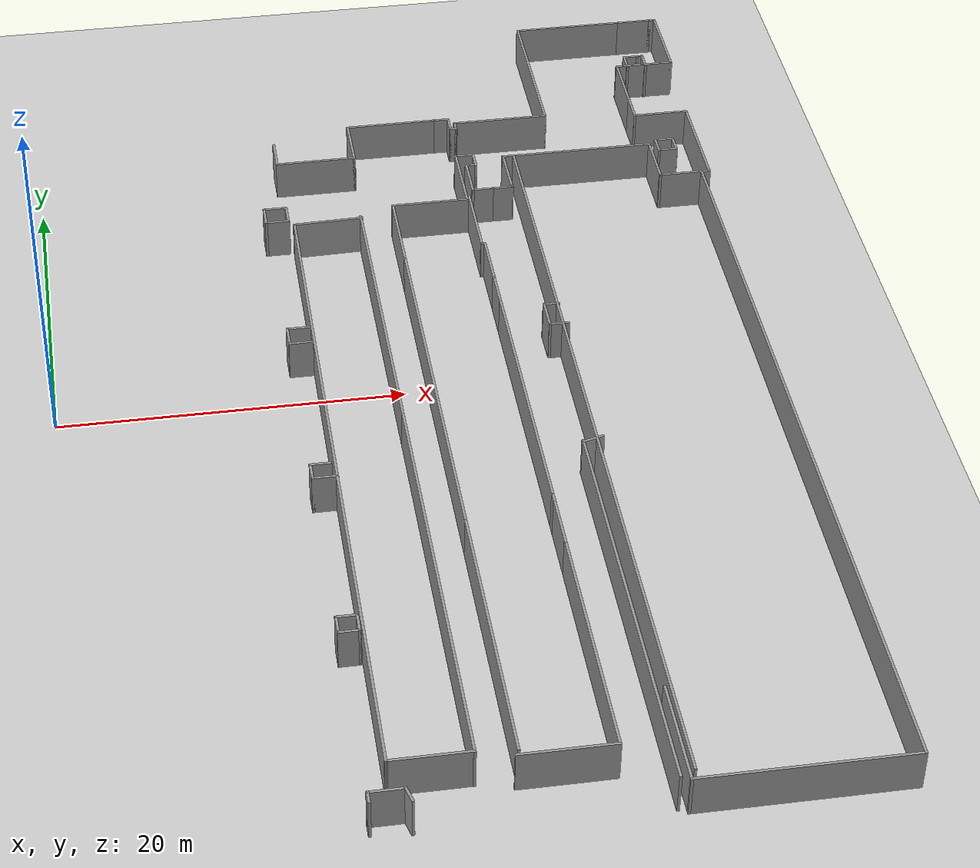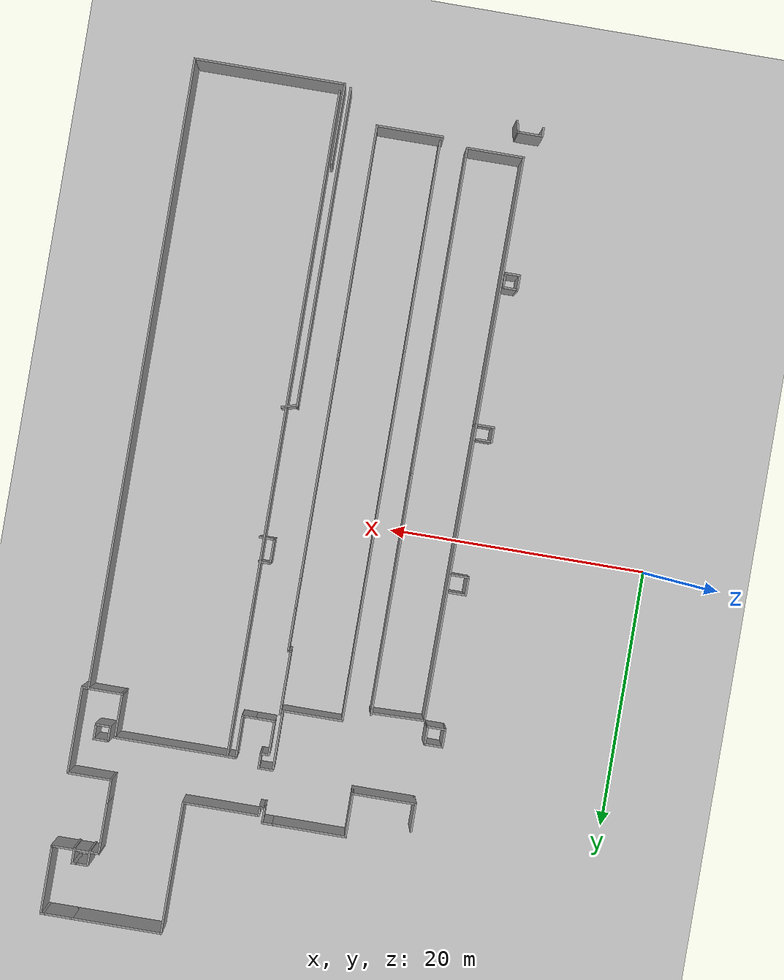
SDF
<sdf version="1.6">
 <world name="default">
  <model name="ground_plane">
   <static>1</static>
   <link name="link">
    <collision name="collision">
     <geometry><plane><normal>0 0 1</normal><size>100 100</size></plane></geometry>
     <surface><friction><ode><mu>100</mu><mu2>50</mu2></ode></friction></surface>
    </collision>
    <visual name="visual">
     <transparency>1</transparency>
     <cast_shadows>0</cast_shadows>
     <geometry><plane><normal>0 0 1</normal><size>100 100</size></plane></geometry>
     <material>
      <script><uri>file://media/materials/scripts/gazebo.material</uri><name>Gazebo/Grey</name></script>
     </material>
    </visual>
   </link>
  </model>
  <model name="AGV_smt">
   <pose>-16.0022 0.08637 0 0 -0 0</pose>
   <link name="Wall_101">
    <collision name="Wall_101_Collision">
     <geometry><box><size>1.25 0.15 2.5</size></box></geometry>
     <pose>0 0 1.25 0 -0 0</pose>
    </collision>
    <visual name="Wall_101_Visual">
     <pose>0 0 1.25 0 -0 0</pose>
     <geometry><box><size>1.25 0.15 2.5</size></box></geometry>
     <material>
      <script><uri>file://media/materials/scripts/gazebo.material</uri><name>Gazebo/Grey</name></script>
      <ambient>1 1 1 1</ambient>
     </material>
    </visual>
    <pose>30.186 -20.9124 0 0 -0 3.14159</pose>
   </link>
   <link name="Wall_102">
    <collision name="Wall_102_Collision">
     <geometry><box><size>1.25 0.15 2.5</size></box></geometry>
     <pose>0 0 1.25 0 -0 0</pose>
    </collision>
    <visual name="Wall_102_Visual">
     <pose>0 0 1.25 0 -0 0</pose>
     <geometry><box><size>1.25 0.15 2.5</size></box></geometry>
     <material>
      <script><uri>file://media/materials/scripts/gazebo.material</uri><name>Gazebo/Grey</name></script>
      <ambient>1 1 1 1</ambient>
     </material>
    </visual>
    <pose>29.636 -20.3624 0 0 -0 1.5708</pose>
   </link>
   <link name="Wall_103">
    <collision name="Wall_103_Collision">
     <geometry><box><size>1.25 0.15 2.5</size></box></geometry>
     <pose>0 0 1.25 0 -0 0</pose>
    </collision>
    <visual name="Wall_103_Visual">
     <pose>0 0 1.25 0 -0 0</pose>
     <geometry><box><size>1.25 0.15 2.5</size></box></geometry>
     <material>
      <script><uri>file://media/materials/scripts/gazebo.material</uri><name>Gazebo/Grey</name></script>
      <ambient>1 1 1 1</ambient>
     </material>
    </visual>
    <pose>30.186 -19.8124 0 0 -0 0</pose>
   </link>
   <link name="Wall_104">
    <collision name="Wall_104_Collision">
     <geometry><box><size>1.25 0.15 2.5</size></box></geometry>
     <pose>0 0 1.25 0 -0 0</pose>
    </collision>
    <visual name="Wall_104_Visual">
     <pose>0 0 1.25 0 -0 0</pose>
     <geometry><box><size>1.25 0.15 2.5</size></box></geometry>
     <material>
      <script><uri>file://media/materials/scripts/gazebo.material</uri><name>Gazebo/Grey</name></script>
      <ambient>1 1 1 1</ambient>
     </material>
    </visual>
    <pose>30.736 -20.3624 0 0 0 -1.5708</pose>
   </link>
   <link name="Wall_172">
    <collision name="Wall_172_Collision">
     <geometry><box><size>51.4198 0.15 2.5</size></box></geometry>
     <pose>0 0 1.25 0 -0 0</pose>
    </collision>
    <visual name="Wall_172_Visual">
     <pose>0 0 1.25 0 -0 0</pose>
     <geometry><box><size>51.4198 0.15 2.5</size></box></geometry>
     <material>
      <script><uri>file://media/materials/scripts/gazebo.material</uri><name>Gazebo/Grey</name></script>
      <ambient>1 1 1 1</ambient>
     </material>
    </visual>
    <pose>45.5282 -6.82754 0 0 -0 1.5708</pose>
   </link>
   <link name="Wall_174">
    <collision name="Wall_174_Collision">
     <geometry><box><size>1.25 0.15 2.5</size></box></geometry>
     <pose>0 0 1.25 0 -0 0</pose>
    </collision>
    <visual name="Wall_174_Visual">
     <pose>0 0 1.25 0 -0 0</pose>
     <geometry><box><size>1.25 0.15 2.5</size></box></geometry>
     <material>
      <script><uri>file://media/materials/scripts/gazebo.material</uri><name>Gazebo/Grey</name></script>
      <ambient>1 1 1 1</ambient>
     </material>
    </visual>
    <pose>54.69 18.7491 0 0 0 -1.5708</pose>
   </link>
   <link name="Wall_175">
    <collision name="Wall_175_Collision">
     <geometry><box><size>1.25 0.15 2.5</size></box></geometry>
     <pose>0 0 1.25 0 -0 0</pose>
    </collision>
    <visual name="Wall_175_Visual">
     <pose>0 0 1.25 0 -0 0</pose>
     <geometry><box><size>1.25 0.15 2.5</size></box></geometry>
     <material>
      <script><uri>file://media/materials/scripts/gazebo.material</uri><name>Gazebo/Grey</name></script>
      <ambient>1 1 1 1</ambient>
     </material>
    </visual>
    <pose>55.2401 18.1991 0 0 -0 0</pose>
   </link>
   <link name="Wall_176">
    <collision name="Wall_176_Collision">
     <geometry><box><size>1.25 0.15 2.5</size></box></geometry>
     <pose>0 0 1.25 0 -0 0</pose>
    </collision>
    <visual name="Wall_176_Visual">
     <pose>0 0 1.25 0 -0 0</pose>
     <geometry><box><size>1.25 0.15 2.5</size></box></geometry>
     <material>
      <script><uri>file://media/materials/scripts/gazebo.material</uri><name>Gazebo/Grey</name></script>
      <ambient>1 1 1 1</ambient>
     </material>
    </visual>
    <pose>55.7901 18.7491 0 0 -0 1.5708</pose>
   </link>
   <link name="Wall_177">
    <collision name="Wall_177_Collision">
     <geometry><box><size>1.25 0.15 2.5</size></box></geometry>
     <pose>0 0 1.25 0 -0 0</pose>
    </collision>
    <visual name="Wall_177_Visual">
     <pose>0 0 1.25 0 -0 0</pose>
     <geometry><box><size>1.25 0.15 2.5</size></box></geometry>
     <material>
      <script><uri>file://media/materials/scripts/gazebo.material</uri><name>Gazebo/Grey</name></script>
      <ambient>1 1 1 1</ambient>
     </material>
    </visual>
    <pose>55.2401 19.2991 0 0 -0 3.14159</pose>
   </link>
   <link name="Wall_179">
    <collision name="Wall_179_Collision">
     <geometry><box><size>1.25 0.15 2.5</size></box></geometry>
     <pose>0 0 1.25 0 -0 0</pose>
    </collision>
    <visual name="Wall_179_Visual">
     <pose>0 0 1.25 0 -0 0</pose>
     <geometry><box><size>1.25 0.15 2.5</size></box></geometry>
     <material>
      <script><uri>file://media/materials/scripts/gazebo.material</uri><name>Gazebo/Grey</name></script>
      <ambient>1 1 1 1</ambient>
     </material>
    </visual>
    <pose>54.6433 28.3539 0 0 -0 1.5708</pose>
   </link>
   <link name="Wall_180">
    <collision name="Wall_180_Collision">
     <geometry><box><size>1 0.15 2.5</size></box></geometry>
     <pose>0 0 1.25 0 -0 0</pose>
    </collision>
    <visual name="Wall_180_Visual">
     <pose>0 0 1.25 0 -0 0</pose>
     <geometry><box><size>1 0.15 2.5</size></box></geometry>
     <material>
      <script><uri>file://media/materials/scripts/gazebo.material</uri><name>Gazebo/Grey</name></script>
      <ambient>1 1 1 1</ambient>
     </material>
    </visual>
    <pose>55.0683 28.9039 0 0 -0 0</pose>
   </link>
   <link name="Wall_181">
    <collision name="Wall_181_Collision">
     <geometry><box><size>0.5 0.15 2.5</size></box></geometry>
     <pose>0 0 1.25 0 -0 0</pose>
    </collision>
    <visual name="Wall_181_Visual">
     <pose>0 0 1.25 0 -0 0</pose>
     <geometry><box><size>0.5 0.15 2.5</size></box></geometry>
     <material>
      <script><uri>file://media/materials/scripts/gazebo.material</uri><name>Gazebo/Grey</name></script>
      <ambient>1 1 1 1</ambient>
     </material>
    </visual>
    <pose>55.6683 28.9039 0 0 -0 0</pose>
   </link>
   <link name="Wall_182">
    <collision name="Wall_182_Collision">
     <geometry><box><size>1.25 0.15 2.5</size></box></geometry>
     <pose>0 0 1.25 0 -0 0</pose>
    </collision>
    <visual name="Wall_182_Visual">
     <pose>0 0 1.25 0 -0 0</pose>
     <geometry><box><size>1.25 0.15 2.5</size></box></geometry>
     <material>
      <script><uri>file://media/materials/scripts/gazebo.material</uri><name>Gazebo/Grey</name></script>
      <ambient>1 1 1 1</ambient>
     </material>
    </visual>
    <pose>55.8433 28.3539 0 0 0 -1.5708</pose>
   </link>
   <link name="Wall_184">
    <collision name="Wall_184_Collision">
     <geometry><box><size>1 0.15 2.5</size></box></geometry>
     <pose>0 0 1.25 0 -0 0</pose>
    </collision>
    <visual name="Wall_184_Visual">
     <pose>0 0 1.25 0 -0 0</pose>
     <geometry><box><size>1 0.15 2.5</size></box></geometry>
     <material>
      <script><uri>file://media/materials/scripts/gazebo.material</uri><name>Gazebo/Grey</name></script>
      <ambient>1 1 1 1</ambient>
     </material>
    </visual>
    <pose>45.1759 3.8874 0 0 -0 3.14159</pose>
   </link>
   <link name="Wall_185">
    <collision name="Wall_185_Collision">
     <geometry><box><size>2 0.15 2.5</size></box></geometry>
     <pose>0 0 1.25 0 -0 0</pose>
    </collision>
    <visual name="Wall_185_Visual">
     <pose>0 0 1.25 0 -0 0</pose>
     <geometry><box><size>2 0.15 2.5</size></box></geometry>
     <material>
      <script><uri>file://media/materials/scripts/gazebo.material</uri><name>Gazebo/Grey</name></script>
      <ambient>1 1 1 1</ambient>
     </material>
    </visual>
    <pose>44.7509 2.9624 0 0 0 -1.5708</pose>
   </link>
   <link name="Wall_186">
    <collision name="Wall_186_Collision">
     <geometry><box><size>1.25 0.15 2.5</size></box></geometry>
     <pose>0 0 1.25 0 -0 0</pose>
    </collision>
    <visual name="Wall_186_Visual">
     <pose>0 0 1.25 0 -0 0</pose>
     <geometry><box><size>1.25 0.15 2.5</size></box></geometry>
     <material>
      <script><uri>file://media/materials/scripts/gazebo.material</uri><name>Gazebo/Grey</name></script>
      <ambient>1 1 1 1</ambient>
     </material>
    </visual>
    <pose>45.3009 2.0374 0 0 -0 0</pose>
   </link>
   <link name="Wall_188">
    <collision name="Wall_188_Collision">
     <geometry><box><size>1.33211 0.15 2.5</size></box></geometry>
     <pose>0 0 1.25 0 -0 0</pose>
    </collision>
    <visual name="Wall_188_Visual">
     <pose>0 0 1.25 0 -0 0</pose>
     <geometry><box><size>1.33211 0.15 2.5</size></box></geometry>
     <material>
      <script><uri>file://media/materials/scripts/gazebo.material</uri><name>Gazebo/Grey</name></script>
      <ambient>1 1 1 1</ambient>
     </material>
    </visual>
    <pose>45.3002 -8.1828 0 0 0 -2.87045</pose>
   </link>
   <link name="Wall_189">
    <collision name="Wall_189_Collision">
     <geometry><box><size>24.75 0.15 2.5</size></box></geometry>
     <pose>0 0 1.25 0 -0 0</pose>
    </collision>
    <visual name="Wall_189_Visual">
     <pose>0 0 1.25 0 -0 0</pose>
     <geometry><box><size>24.75 0.15 2.5</size></box></geometry>
     <material>
      <script><uri>file://media/materials/scripts/gazebo.material</uri><name>Gazebo/Grey</name></script>
      <ambient>1 1 1 1</ambient>
     </material>
    </visual>
    <pose>44.7308 -20.5356 0 0 0 -1.5708</pose>
   </link>
   <link name="Wall_199">
    <collision name="Wall_199_Collision">
     <geometry><box><size>0.75 0.15 2.5</size></box></geometry>
     <pose>0 0 1.25 0 -0 0</pose>
    </collision>
    <visual name="Wall_199_Visual">
     <pose>0 0 1.25 0 -0 0</pose>
     <geometry><box><size>0.75 0.15 2.5</size></box></geometry>
     <material>
      <script><uri>file://media/materials/scripts/gazebo.material</uri><name>Gazebo/Grey</name></script>
      <ambient>1 1 1 1</ambient>
     </material>
    </visual>
    <pose>29.7216 -31.9815 0 0 -0 1.5708</pose>
   </link>
   <link name="Wall_200">
    <collision name="Wall_200_Collision">
     <geometry><box><size>2 0.15 2.5</size></box></geometry>
     <pose>0 0 1.25 0 -0 0</pose>
    </collision>
    <visual name="Wall_200_Visual">
     <pose>0 0 1.25 0 -0 0</pose>
     <geometry><box><size>2 0.15 2.5</size></box></geometry>
     <material>
      <script><uri>file://media/materials/scripts/gazebo.material</uri><name>Gazebo/Grey</name></script>
      <ambient>1 1 1 1</ambient>
     </material>
    </visual>
    <pose>30.6466 -31.6815 0 0 -0 0</pose>
   </link>
   <link name="Wall_201">
    <collision name="Wall_201_Collision">
     <geometry><box><size>1 0.15 2.5</size></box></geometry>
     <pose>0 0 1.25 0 -0 0</pose>
    </collision>
    <visual name="Wall_201_Visual">
     <pose>0 0 1.25 0 -0 0</pose>
     <geometry><box><size>1 0.15 2.5</size></box></geometry>
     <material>
      <script><uri>file://media/materials/scripts/gazebo.material</uri><name>Gazebo/Grey</name></script>
      <ambient>1 1 1 1</ambient>
     </material>
    </visual>
    <pose>31.6816 -32.092 0 0 0 -1.309</pose>
   </link>
   <link name="Wall_219">
    <collision name="Wall_219_Collision">
     <geometry><box><size>48.75 0.15 2.5</size></box></geometry>
     <pose>0 0 1.25 0 -0 0</pose>
    </collision>
    <visual name="Wall_219_Visual">
     <pose>0 0 1.25 0 -0 0</pose>
     <geometry><box><size>48.75 0.15 2.5</size></box></geometry>
     <material>
      <script><uri>file://media/materials/scripts/gazebo.material</uri><name>Gazebo/Grey</name></script>
      <ambient>1 1 1 1</ambient>
     </material>
    </visual>
    <pose>56.8238 -8.78608 0 0 0 -1.5708</pose>
   </link>
   <link name="Wall_22">
    <collision name="Wall_22_Collision">
     <geometry><box><size>2.25 0.15 2.5</size></box></geometry>
     <pose>0 0 1.25 0 -0 0</pose>
    </collision>
    <visual name="Wall_22_Visual">
     <pose>0 0 1.25 0 -0 0</pose>
     <geometry><box><size>2.25 0.15 2.5</size></box></geometry>
     <material>
      <script><uri>file://media/materials/scripts/gazebo.material</uri><name>Gazebo/Grey</name></script>
      <ambient>1 1 1 1</ambient>
     </material>
    </visual>
    <pose>30.7578 21.1861 0 0 0 -1.5708</pose>
   </link>
   <link name="Wall_220">
    <collision name="Wall_220_Collision">
     <geometry><box><size>11.75 0.15 2.5</size></box></geometry>
     <pose>0 0 1.25 0 -0 0</pose>
    </collision>
    <visual name="Wall_220_Visual">
     <pose>0 0 1.25 0 -0 0</pose>
     <geometry><box><size>11.75 0.15 2.5</size></box></geometry>
     <material>
      <script><uri>file://media/materials/scripts/gazebo.material</uri><name>Gazebo/Grey</name></script>
      <ambient>1 1 1 1</ambient>
     </material>
    </visual>
    <pose>51.0238 -33.0861 0 0 -0 3.14159</pose>
   </link>
   <link name="Wall_221">
    <collision name="Wall_221_Collision">
     <geometry><box><size>6.25 0.15 2.5</size></box></geometry>
     <pose>0 0 1.25 0 -0 0</pose>
    </collision>
    <visual name="Wall_221_Visual">
     <pose>0 0 1.25 0 -0 0</pose>
     <geometry><box><size>6.25 0.15 2.5</size></box></geometry>
     <material>
      <script><uri>file://media/materials/scripts/gazebo.material</uri><name>Gazebo/Grey</name></script>
      <ambient>1 1 1 1</ambient>
     </material>
    </visual>
    <pose>45.2238 -30.0361 0 0 -0 1.5708</pose>
   </link>
   <link name="Wall_23">
    <collision name="Wall_23_Collision">
     <geometry><box><size>5 0.15 2.5</size></box></geometry>
     <pose>0 0 1.25 0 -0 0</pose>
    </collision>
    <visual name="Wall_23_Visual">
     <pose>0 0 1.25 0 -0 0</pose>
     <geometry><box><size>5 0.15 2.5</size></box></geometry>
     <material>
      <script><uri>file://media/materials/scripts/gazebo.material</uri><name>Gazebo/Grey</name></script>
      <ambient>1 1 1 1</ambient>
     </material>
    </visual>
    <pose>33.1828 20.1361 0 0 -0 0</pose>
   </link>
   <link name="Wall_24">
    <collision name="Wall_24_Collision">
     <geometry><box><size>3.5 0.15 2.5</size></box></geometry>
     <pose>0 0 1.25 0 -0 0</pose>
    </collision>
    <visual name="Wall_24_Visual">
     <pose>0 0 1.25 0 -0 0</pose>
     <geometry><box><size>3.5 0.15 2.5</size></box></geometry>
     <material>
      <script><uri>file://media/materials/scripts/gazebo.material</uri><name>Gazebo/Grey</name></script>
      <ambient>1 1 1 1</ambient>
     </material>
    </visual>
    <pose>35.6078 21.8111 0 0 -0 1.5708</pose>
   </link>
   <link name="Wall_25">
    <collision name="Wall_25_Collision">
     <geometry><box><size>5.75 0.15 2.5</size></box></geometry>
     <pose>0 0 1.25 0 -0 0</pose>
    </collision>
    <visual name="Wall_25_Visual">
     <pose>0 0 1.25 0 -0 0</pose>
     <geometry><box><size>5.75 0.15 2.5</size></box></geometry>
     <material>
      <script><uri>file://media/materials/scripts/gazebo.material</uri><name>Gazebo/Grey</name></script>
      <ambient>1 1 1 1</ambient>
     </material>
    </visual>
    <pose>38.4078 23.4861 0 0 -0 0</pose>
   </link>
   <link name="Wall_27">
    <collision name="Wall_27_Collision">
     <geometry><box><size>1 0.15 2.5</size></box></geometry>
     <pose>0 0 1.25 0 -0 0</pose>
    </collision>
    <visual name="Wall_27_Visual">
     <pose>0 0 1.25 0 -0 0</pose>
     <geometry><box><size>1 0.15 2.5</size></box></geometry>
     <material>
      <script><uri>file://media/materials/scripts/gazebo.material</uri><name>Gazebo/Grey</name></script>
      <ambient>1 1 1 1</ambient>
     </material>
    </visual>
    <pose>41.6328 23.4861 0 0 -0 0</pose>
   </link>
   <link name="Wall_28">
    <collision name="Wall_28_Collision">
     <geometry><box><size>1.25 0.15 2.5</size></box></geometry>
     <pose>0 0 1.25 0 -0 0</pose>
    </collision>
    <visual name="Wall_28_Visual">
     <pose>0 0 1.25 0 -0 0</pose>
     <geometry><box><size>1.25 0.15 2.5</size></box></geometry>
     <material>
      <script><uri>file://media/materials/scripts/gazebo.material</uri><name>Gazebo/Grey</name></script>
      <ambient>1 1 1 1</ambient>
     </material>
    </visual>
    <pose>42.0578 22.9361 0 0 0 -1.5708</pose>
   </link>
   <link name="Wall_29">
    <collision name="Wall_29_Collision">
     <geometry><box><size>0.5 0.15 2.5</size></box></geometry>
     <pose>0 0 1.25 0 -0 0</pose>
    </collision>
    <visual name="Wall_29_Visual">
     <pose>0 0 1.25 0 -0 0</pose>
     <geometry><box><size>0.5 0.15 2.5</size></box></geometry>
     <material>
      <script><uri>file://media/materials/scripts/gazebo.material</uri><name>Gazebo/Grey</name></script>
      <ambient>1 1 1 1</ambient>
     </material>
    </visual>
    <pose>42.2328 22.3861 0 0 -0 0</pose>
   </link>
   <link name="Wall_30">
    <collision name="Wall_30_Collision">
     <geometry><box><size>0.75 0.15 2.5</size></box></geometry>
     <pose>0 0 1.25 0 -0 0</pose>
    </collision>
    <visual name="Wall_30_Visual">
     <pose>0 0 1.25 0 -0 0</pose>
     <geometry><box><size>0.75 0.15 2.5</size></box></geometry>
     <material>
      <script><uri>file://media/materials/scripts/gazebo.material</uri><name>Gazebo/Grey</name></script>
      <ambient>1 1 1 1</ambient>
     </material>
    </visual>
    <pose>42.4078 22.6861 0 0 -0 1.5708</pose>
   </link>
   <link name="Wall_31">
    <collision name="Wall_31_Collision">
     <geometry><box><size>6 0.15 2.5</size></box></geometry>
     <pose>0 0 1.25 0 -0 0</pose>
    </collision>
    <visual name="Wall_31_Visual">
     <pose>0 0 1.25 0 -0 0</pose>
     <geometry><box><size>6 0.15 2.5</size></box></geometry>
     <material>
      <script><uri>file://media/materials/scripts/gazebo.material</uri><name>Gazebo/Grey</name></script>
      <ambient>1 1 1 1</ambient>
     </material>
    </visual>
    <pose>45.3328 22.9861 0 0 -0 0</pose>
   </link>
   <link name="Wall_32">
    <collision name="Wall_32_Collision">
     <geometry><box><size>10.25 0.15 2.5</size></box></geometry>
     <pose>0 0 1.25 0 -0 0</pose>
    </collision>
    <visual name="Wall_32_Visual">
     <pose>0 0 1.25 0 -0 0</pose>
     <geometry><box><size>10.25 0.15 2.5</size></box></geometry>
     <material>
      <script><uri>file://media/materials/scripts/gazebo.material</uri><name>Gazebo/Grey</name></script>
      <ambient>1 1 1 1</ambient>
     </material>
    </visual>
    <pose>48.2578 28.0361 0 0 -0 1.5708</pose>
   </link>
   <link name="Wall_33">
    <collision name="Wall_33_Collision">
     <geometry><box><size>7 0.15 2.5</size></box></geometry>
     <pose>0 0 1.25 0 -0 0</pose>
    </collision>
    <visual name="Wall_33_Visual">
     <pose>0 0 1.25 0 -0 0</pose>
     <geometry><box><size>7 0.15 2.5</size></box></geometry>
     <material>
      <script><uri>file://media/materials/scripts/gazebo.material</uri><name>Gazebo/Grey</name></script>
      <ambient>1 1 1 1</ambient>
     </material>
    </visual>
    <pose>51.6828 33.0861 0 0 -0 0</pose>
   </link>
   <link name="Wall_35">
    <collision name="Wall_35_Collision">
     <geometry><box><size>2.25 0.15 2.5</size></box></geometry>
     <pose>0 0 1.25 0 -0 0</pose>
    </collision>
    <visual name="Wall_35_Visual">
     <pose>0 0 1.25 0 -0 0</pose>
     <geometry><box><size>2.25 0.15 2.5</size></box></geometry>
     <material>
      <script><uri>file://media/materials/scripts/gazebo.material</uri><name>Gazebo/Grey</name></script>
      <ambient>1 1 1 1</ambient>
     </material>
    </visual>
    <pose>56.1578 33.0861 0 0 -0 0</pose>
   </link>
   <link name="Wall_37">
    <collision name="Wall_37_Collision">
     <geometry><box><size>0.5 0.15 2.5</size></box></geometry>
     <pose>0 0 1.25 0 -0 0</pose>
    </collision>
    <visual name="Wall_37_Visual">
     <pose>0 0 1.25 0 -0 0</pose>
     <geometry><box><size>0.5 0.15 2.5</size></box></geometry>
     <material>
      <script><uri>file://media/materials/scripts/gazebo.material</uri><name>Gazebo/Grey</name></script>
      <ambient>1 1 1 1</ambient>
     </material>
    </visual>
    <pose>57.3828 33.0861 0 0 -0 0</pose>
   </link>
   <link name="Wall_38">
    <collision name="Wall_38_Collision">
     <geometry><box><size>5.25 0.15 2.5</size></box></geometry>
     <pose>0 0 1.25 0 -0 0</pose>
    </collision>
    <visual name="Wall_38_Visual">
     <pose>0 0 1.25 0 -0 0</pose>
     <geometry><box><size>5.25 0.15 2.5</size></box></geometry>
     <material>
      <script><uri>file://media/materials/scripts/gazebo.material</uri><name>Gazebo/Grey</name></script>
      <ambient>1 1 1 1</ambient>
     </material>
    </visual>
    <pose>57.5578 30.5361 0 0 0 -1.5708</pose>
   </link>
   <link name="Wall_39">
    <collision name="Wall_39_Collision">
     <geometry><box><size>0.25 0.15 2.5</size></box></geometry>
     <pose>0 0 1.25 0 -0 0</pose>
    </collision>
    <visual name="Wall_39_Visual">
     <pose>0 0 1.25 0 -0 0</pose>
     <geometry><box><size>0.25 0.15 2.5</size></box></geometry>
     <material>
      <script><uri>file://media/materials/scripts/gazebo.material</uri><name>Gazebo/Grey</name></script>
      <ambient>1 1 1 1</ambient>
     </material>
    </visual>
    <pose>57.5578 27.9361 0 0 0 -1.5708</pose>
   </link>
   <link name="Wall_40">
    <collision name="Wall_40_Collision">
     <geometry><box><size>3.75 0.15 2.5</size></box></geometry>
     <pose>0 0 1.25 0 -0 0</pose>
    </collision>
    <visual name="Wall_40_Visual">
     <pose>0 0 1.25 0 -0 0</pose>
     <geometry><box><size>3.75 0.15 2.5</size></box></geometry>
     <material>
      <script><uri>file://media/materials/scripts/gazebo.material</uri><name>Gazebo/Grey</name></script>
      <ambient>1 1 1 1</ambient>
     </material>
    </visual>
    <pose>55.7578 27.8861 0 0 -0 3.14159</pose>
   </link>
   <link name="Wall_41">
    <collision name="Wall_41_Collision">
     <geometry><box><size>4 0.15 2.5</size></box></geometry>
     <pose>0 0 1.25 0 -0 0</pose>
    </collision>
    <visual name="Wall_41_Visual">
     <pose>0 0 1.25 0 -0 0</pose>
     <geometry><box><size>4 0.15 2.5</size></box></geometry>
     <material>
      <script><uri>file://media/materials/scripts/gazebo.material</uri><name>Gazebo/Grey</name></script>
      <ambient>1 1 1 1</ambient>
     </material>
    </visual>
    <pose>53.9578 25.9611 0 0 0 -1.5708</pose>
   </link>
   <link name="Wall_43">
    <collision name="Wall_43_Collision">
     <geometry><box><size>2 0.15 2.5</size></box></geometry>
     <pose>0 0 1.25 0 -0 0</pose>
    </collision>
    <visual name="Wall_43_Visual">
     <pose>0 0 1.25 0 -0 0</pose>
     <geometry><box><size>2 0.15 2.5</size></box></geometry>
     <material>
      <script><uri>file://media/materials/scripts/gazebo.material</uri><name>Gazebo/Grey</name></script>
      <ambient>1 1 1 1</ambient>
     </material>
    </visual>
    <pose>53.9578 23.1111 0 0 0 -1.5708</pose>
   </link>
   <link name="Wall_44">
    <collision name="Wall_44_Collision">
     <geometry><box><size>3.5 0.15 2.5</size></box></geometry>
     <pose>0 0 1.25 0 -0 0</pose>
    </collision>
    <visual name="Wall_44_Visual">
     <pose>0 0 1.25 0 -0 0</pose>
     <geometry><box><size>3.5 0.15 2.5</size></box></geometry>
     <material>
      <script><uri>file://media/materials/scripts/gazebo.material</uri><name>Gazebo/Grey</name></script>
      <ambient>1 1 1 1</ambient>
     </material>
    </visual>
    <pose>55.6328 22.1861 0 0 -0 0</pose>
   </link>
   <link name="Wall_45">
    <collision name="Wall_45_Collision">
     <geometry><box><size>6.75 0.15 2.5</size></box></geometry>
     <pose>0 0 1.25 0 -0 0</pose>
    </collision>
    <visual name="Wall_45_Visual">
     <pose>0 0 1.25 0 -0 0</pose>
     <geometry><box><size>6.75 0.15 2.5</size></box></geometry>
     <material>
      <script><uri>file://media/materials/scripts/gazebo.material</uri><name>Gazebo/Grey</name></script>
      <ambient>1 1 1 1</ambient>
     </material>
    </visual>
    <pose>57.3078 18.8861 0 0 0 -1.5708</pose>
   </link>
   <link name="Wall_46">
    <collision name="Wall_46_Collision">
     <geometry><box><size>3.25 0.15 2.5</size></box></geometry>
     <pose>0 0 1.25 0 -0 0</pose>
    </collision>
    <visual name="Wall_46_Visual">
     <pose>0 0 1.25 0 -0 0</pose>
     <geometry><box><size>3.25 0.15 2.5</size></box></geometry>
     <material>
      <script><uri>file://media/materials/scripts/gazebo.material</uri><name>Gazebo/Grey</name></script>
      <ambient>1 1 1 1</ambient>
     </material>
    </visual>
    <pose>55.7578 15.5861 0 0 -0 3.14159</pose>
   </link>
   <link name="Wall_47">
    <collision name="Wall_47_Collision">
     <geometry><box><size>3.5 0.15 2.5</size></box></geometry>
     <pose>0 0 1.25 0 -0 0</pose>
    </collision>
    <visual name="Wall_47_Visual">
     <pose>0 0 1.25 0 -0 0</pose>
     <geometry><box><size>3.5 0.15 2.5</size></box></geometry>
     <material>
      <script><uri>file://media/materials/scripts/gazebo.material</uri><name>Gazebo/Grey</name></script>
      <ambient>1 1 1 1</ambient>
     </material>
    </visual>
    <pose>54.2078 17.2611 0 0 -0 1.5708</pose>
   </link>
   <link name="Wall_48">
    <collision name="Wall_48_Collision">
     <geometry><box><size>9.5 0.15 2.5</size></box></geometry>
     <pose>0 0 1.25 0 -0 0</pose>
    </collision>
    <visual name="Wall_48_Visual">
     <pose>0 0 1.25 0 -0 0</pose>
     <geometry><box><size>9.5 0.15 2.5</size></box></geometry>
     <material>
      <script><uri>file://media/materials/scripts/gazebo.material</uri><name>Gazebo/Grey</name></script>
      <ambient>1 1 1 1</ambient>
     </material>
    </visual>
    <pose>49.5328 18.9361 0 0 -0 3.14159</pose>
   </link>
   <link name="Wall_49">
    <collision name="Wall_49_Collision">
     <geometry><box><size>3.27295 0.15 2.5</size></box></geometry>
     <pose>0 0 1.25 0 -0 0</pose>
    </collision>
    <visual name="Wall_49_Visual">
     <pose>0 0 1.25 0 -0 0</pose>
     <geometry><box><size>3.27295 0.15 2.5</size></box></geometry>
     <material>
      <script><uri>file://media/materials/scripts/gazebo.material</uri><name>Gazebo/Grey</name></script>
      <ambient>1 1 1 1</ambient>
     </material>
    </visual>
    <pose>44.8693 17.3746 0 0 0 -1.56347</pose>
   </link>
   <link name="Wall_54">
    <collision name="Wall_54_Collision">
     <geometry><box><size>0.260739 0.15 2.5</size></box></geometry>
     <pose>0 0 1.25 0 -0 0</pose>
    </collision>
    <visual name="Wall_54_Visual">
     <pose>0 0 1.25 0 -0 0</pose>
     <geometry><box><size>0.260739 0.15 2.5</size></box></geometry>
     <material>
      <script><uri>file://media/materials/scripts/gazebo.material</uri><name>Gazebo/Grey</name></script>
      <ambient>1 1 1 1</ambient>
     </material>
    </visual>
    <pose>44.8767 15.758 0 0 0 -1.64372</pose>
   </link>
   <link name="Wall_55">
    <collision name="Wall_55_Collision">
     <geometry><box><size>1.25 0.15 2.5</size></box></geometry>
     <pose>0 0 1.25 0 -0 0</pose>
    </collision>
    <visual name="Wall_55_Visual">
     <pose>0 0 1.25 0 -0 0</pose>
     <geometry><box><size>1.25 0.15 2.5</size></box></geometry>
     <material>
      <script><uri>file://media/materials/scripts/gazebo.material</uri><name>Gazebo/Grey</name></script>
      <ambient>1 1 1 1</ambient>
     </material>
    </visual>
    <pose>44.3259 15.6995 0 0 -0 3.14159</pose>
   </link>
   <link name="Wall_57">
    <collision name="Wall_57_Collision">
     <geometry><box><size>1.5 0.15 2.5</size></box></geometry>
     <pose>0 0 1.25 0 -0 0</pose>
    </collision>
    <visual name="Wall_57_Visual">
     <pose>0 0 1.25 0 -0 0</pose>
     <geometry><box><size>1.5 0.15 2.5</size></box></geometry>
     <material>
      <script><uri>file://media/materials/scripts/gazebo.material</uri><name>Gazebo/Grey</name></script>
      <ambient>1 1 1 1</ambient>
     </material>
    </visual>
    <pose>43.1009 15.6995 0 0 -0 3.14159</pose>
   </link>
   <link name="Wall_58">
    <collision name="Wall_58_Collision">
     <geometry><box><size>2.75 0.15 2.5</size></box></geometry>
     <pose>0 0 1.25 0 -0 0</pose>
    </collision>
    <visual name="Wall_58_Visual">
     <pose>0 0 1.25 0 -0 0</pose>
     <geometry><box><size>2.75 0.15 2.5</size></box></geometry>
     <material>
      <script><uri>file://media/materials/scripts/gazebo.material</uri><name>Gazebo/Grey</name></script>
      <ambient>1 1 1 1</ambient>
     </material>
    </visual>
    <pose>42.4259 16.9995 0 0 -0 1.5708</pose>
   </link>
   <link name="Wall_59">
    <collision name="Wall_59_Collision">
     <geometry><box><size>0.75 0.15 2.5</size></box></geometry>
     <pose>0 0 1.25 0 -0 0</pose>
    </collision>
    <visual name="Wall_59_Visual">
     <pose>0 0 1.25 0 -0 0</pose>
     <geometry><box><size>0.75 0.15 2.5</size></box></geometry>
     <material>
      <script><uri>file://media/materials/scripts/gazebo.material</uri><name>Gazebo/Grey</name></script>
      <ambient>1 1 1 1</ambient>
     </material>
    </visual>
    <pose>42.7259 18.2995 0 0 -0 0</pose>
   </link>
   <link name="Wall_61">
    <collision name="Wall_61_Collision">
     <geometry><box><size>1.25 0.15 2.5</size></box></geometry>
     <pose>0 0 1.25 0 -0 0</pose>
    </collision>
    <visual name="Wall_61_Visual">
     <pose>0 0 1.25 0 -0 0</pose>
     <geometry><box><size>1.25 0.15 2.5</size></box></geometry>
     <material>
      <script><uri>file://media/materials/scripts/gazebo.material</uri><name>Gazebo/Grey</name></script>
      <ambient>1 1 1 1</ambient>
     </material>
    </visual>
    <pose>43.0259 18.8495 0 0 -0 1.5708</pose>
   </link>
   <link name="Wall_62">
    <collision name="Wall_62_Collision">
     <geometry><box><size>1.25 0.15 2.5</size></box></geometry>
     <pose>0 0 1.25 0 -0 0</pose>
    </collision>
    <visual name="Wall_62_Visual">
     <pose>0 0 1.25 0 -0 0</pose>
     <geometry><box><size>1.25 0.15 2.5</size></box></geometry>
     <material>
      <script><uri>file://media/materials/scripts/gazebo.material</uri><name>Gazebo/Grey</name></script>
      <ambient>1 1 1 1</ambient>
     </material>
    </visual>
    <pose>42.4759 19.3995 0 0 -0 3.14159</pose>
   </link>
   <link name="Wall_64">
    <collision name="Wall_64_Collision">
     <geometry><box><size>4.75 0.15 2.5</size></box></geometry>
     <pose>0 0 1.25 0 -0 0</pose>
    </collision>
    <visual name="Wall_64_Visual">
     <pose>0 0 1.25 0 -0 0</pose>
     <geometry><box><size>4.75 0.15 2.5</size></box></geometry>
     <material>
      <script><uri>file://media/materials/scripts/gazebo.material</uri><name>Gazebo/Grey</name></script>
      <ambient>1 1 1 1</ambient>
     </material>
    </visual>
    <pose>41.9259 17.0995 0 0 0 -1.5708</pose>
   </link>
   <link name="Wall_65">
    <collision name="Wall_65_Collision">
     <geometry><box><size>4.75 0.15 2.5</size></box></geometry>
     <pose>0 0 1.25 0 -0 0</pose>
    </collision>
    <visual name="Wall_65_Visual">
     <pose>0 0 1.25 0 -0 0</pose>
     <geometry><box><size>4.75 0.15 2.5</size></box></geometry>
     <material>
      <script><uri>file://media/materials/scripts/gazebo.material</uri><name>Gazebo/Grey</name></script>
      <ambient>1 1 1 1</ambient>
     </material>
    </visual>
    <pose>39.6259 14.7995 0 0 -0 3.14159</pose>
   </link>
   <link name="Wall_66">
    <collision name="Wall_66_Collision">
     <geometry><box><size>5.5 0.15 2.5</size></box></geometry>
     <pose>0 0 1.25 0 -0 0</pose>
    </collision>
    <visual name="Wall_66_Visual">
     <pose>0 0 1.25 0 -0 0</pose>
     <geometry><box><size>5.5 0.15 2.5</size></box></geometry>
     <material>
      <script><uri>file://media/materials/scripts/gazebo.material</uri><name>Gazebo/Grey</name></script>
      <ambient>1 1 1 1</ambient>
     </material>
    </visual>
    <pose>37.3259 12.1245 0 0 0 -1.5708</pose>
   </link>
   <link name="Wall_67">
    <collision name="Wall_67_Collision">
     <geometry><box><size>23.25 0.15 2.5</size></box></geometry>
     <pose>0 0 1.25 0 -0 0</pose>
    </collision>
    <visual name="Wall_67_Visual">
     <pose>0 0 1.25 0 -0 0</pose>
     <geometry><box><size>23.25 0.15 2.5</size></box></geometry>
     <material>
      <script><uri>file://media/materials/scripts/gazebo.material</uri><name>Gazebo/Grey</name></script>
      <ambient>1 1 1 1</ambient>
     </material>
    </visual>
    <pose>37.3259 -2.10048 0 0 0 -1.5708</pose>
   </link>
   <link name="Wall_68">
    <collision name="Wall_68_Collision">
     <geometry><box><size>16.5 0.15 2.5</size></box></geometry>
     <pose>0 0 1.25 0 -0 0</pose>
    </collision>
    <visual name="Wall_68_Visual">
     <pose>0 0 1.25 0 -0 0</pose>
     <geometry><box><size>16.5 0.15 2.5</size></box></geometry>
     <material>
      <script><uri>file://media/materials/scripts/gazebo.material</uri><name>Gazebo/Grey</name></script>
      <ambient>1 1 1 1</ambient>
     </material>
    </visual>
    <pose>37.3259 -21.8255 0 0 0 -1.5708</pose>
   </link>
   <link name="Wall_70">
    <collision name="Wall_70_Collision">
     <geometry><box><size>5.25 0.15 2.5</size></box></geometry>
     <pose>0 0 1.25 0 -0 0</pose>
    </collision>
    <visual name="Wall_70_Visual">
     <pose>0 0 1.25 0 -0 0</pose>
     <geometry><box><size>5.25 0.15 2.5</size></box></geometry>
     <material>
      <script><uri>file://media/materials/scripts/gazebo.material</uri><name>Gazebo/Grey</name></script>
      <ambient>1 1 1 1</ambient>
     </material>
    </visual>
    <pose>39.7287 -30.3633 0 0 -0 0</pose>
   </link>
   <link name="Wall_71">
    <collision name="Wall_71_Collision">
     <geometry><box><size>14.5 0.15 2.5</size></box></geometry>
     <pose>0 0 1.25 0 -0 0</pose>
    </collision>
    <visual name="Wall_71_Visual">
     <pose>0 0 1.25 0 -0 0</pose>
     <geometry><box><size>14.5 0.15 2.5</size></box></geometry>
     <material>
      <script><uri>file://media/materials/scripts/gazebo.material</uri><name>Gazebo/Grey</name></script>
      <ambient>1 1 1 1</ambient>
     </material>
    </visual>
    <pose>42.2787 -23.1883 0 0 -0 1.5708</pose>
   </link>
   <link name="Wall_72">
    <collision name="Wall_72_Collision">
     <geometry><box><size>3.25 0.15 2.5</size></box></geometry>
     <pose>0 0 1.25 0 -0 0</pose>
    </collision>
    <visual name="Wall_72_Visual">
     <pose>0 0 1.25 0 -0 0</pose>
     <geometry><box><size>3.25 0.15 2.5</size></box></geometry>
     <material>
      <script><uri>file://media/materials/scripts/gazebo.material</uri><name>Gazebo/Grey</name></script>
      <ambient>1 1 1 1</ambient>
     </material>
    </visual>
    <pose>42.2787 -14.4633 0 0 -0 1.5708</pose>
   </link>
   <link name="Wall_73">
    <collision name="Wall_73_Collision">
     <geometry><box><size>0.75 0.15 2.5</size></box></geometry>
     <pose>0 0 1.25 0 -0 0</pose>
    </collision>
    <visual name="Wall_73_Visual">
     <pose>0 0 1.25 0 -0 0</pose>
     <geometry><box><size>0.75 0.15 2.5</size></box></geometry>
     <material>
      <script><uri>file://media/materials/scripts/gazebo.material</uri><name>Gazebo/Grey</name></script>
      <ambient>1 1 1 1</ambient>
     </material>
    </visual>
    <pose>42.2787 -12.6133 0 0 -0 1.5708</pose>
   </link>
   <link name="Wall_75">
    <collision name="Wall_75_Collision">
     <geometry><box><size>17 0.15 2.5</size></box></geometry>
     <pose>0 0 1.25 0 -0 0</pose>
    </collision>
    <visual name="Wall_75_Visual">
     <pose>0 0 1.25 0 -0 0</pose>
     <geometry><box><size>17 0.15 2.5</size></box></geometry>
     <material>
      <script><uri>file://media/materials/scripts/gazebo.material</uri><name>Gazebo/Grey</name></script>
      <ambient>1 1 1 1</ambient>
     </material>
    </visual>
    <pose>42.2787 -3.88833 0 0 -0 1.5708</pose>
   </link>
   <link name="Wall_76">
    <collision name="Wall_76_Collision">
     <geometry><box><size>2.5 0.15 2.5</size></box></geometry>
     <pose>0 0 1.25 0 -0 0</pose>
    </collision>
    <visual name="Wall_76_Visual">
     <pose>0 0 1.25 0 -0 0</pose>
     <geometry><box><size>2.5 0.15 2.5</size></box></geometry>
     <material>
      <script><uri>file://media/materials/scripts/gazebo.material</uri><name>Gazebo/Grey</name></script>
      <ambient>1 1 1 1</ambient>
     </material>
    </visual>
    <pose>42.2787 5.71167 0 0 -0 1.5708</pose>
   </link>
   <link name="Wall_78">
    <collision name="Wall_78_Collision">
     <geometry><box><size>3.5 0.15 2.5</size></box></geometry>
     <pose>0 0 1.25 0 -0 0</pose>
    </collision>
    <visual name="Wall_78_Visual">
     <pose>0 0 1.25 0 -0 0</pose>
     <geometry><box><size>3.5 0.15 2.5</size></box></geometry>
     <material>
      <script><uri>file://media/materials/scripts/gazebo.material</uri><name>Gazebo/Grey</name></script>
      <ambient>1 1 1 1</ambient>
     </material>
    </visual>
    <pose>42.2787 8.56167 0 0 -0 1.5708</pose>
   </link>
   <link name="Wall_79">
    <collision name="Wall_79_Collision">
     <geometry><box><size>0.336047 0.15 2.5</size></box></geometry>
     <pose>0 0 1.25 0 -0 0</pose>
    </collision>
    <visual name="Wall_79_Visual">
     <pose>0 0 1.25 0 -0 0</pose>
     <geometry><box><size>0.336047 0.15 2.5</size></box></geometry>
     <material>
      <script><uri>file://media/materials/scripts/gazebo.material</uri><name>Gazebo/Grey</name></script>
      <ambient>1 1 1 1</ambient>
     </material>
    </visual>
    <pose>42.1857 10.2354 0 0 0 -3.12846</pose>
   </link>
   <link name="Wall_80">
    <collision name="Wall_80_Collision">
     <geometry><box><size>5 0.15 2.5</size></box></geometry>
     <pose>0 0 1.25 0 -0 0</pose>
    </collision>
    <visual name="Wall_80_Visual">
     <pose>0 0 1.25 0 -0 0</pose>
     <geometry><box><size>5 0.15 2.5</size></box></geometry>
     <material>
      <script><uri>file://media/materials/scripts/gazebo.material</uri><name>Gazebo/Grey</name></script>
      <ambient>1 1 1 1</ambient>
     </material>
    </visual>
    <pose>42.0927 12.6635 0 0 -0 1.5708</pose>
   </link>
   <link name="Wall_82">
    <collision name="Wall_82_Collision">
     <geometry><box><size>18.75 0.15 2.5</size></box></geometry>
     <pose>0 0 1.25 0 -0 0</pose>
    </collision>
    <visual name="Wall_82_Visual">
     <pose>0 0 1.25 0 -0 0</pose>
     <geometry><box><size>18.75 0.15 2.5</size></box></geometry>
     <material>
      <script><uri>file://media/materials/scripts/gazebo.material</uri><name>Gazebo/Grey</name></script>
      <ambient>1 1 1 1</ambient>
     </material>
    </visual>
    <pose>35.2304 4.68115 0 0 0 -1.5708</pose>
   </link>
   <link name="Wall_83">
    <collision name="Wall_83_Collision">
     <geometry><box><size>25.3708 0.15 2.5</size></box></geometry>
     <pose>0 0 1.25 0 -0 0</pose>
    </collision>
    <visual name="Wall_83_Visual">
     <pose>0 0 1.25 0 -0 0</pose>
     <geometry><box><size>25.3708 0.15 2.5</size></box></geometry>
     <material>
      <script><uri>file://media/materials/scripts/gazebo.material</uri><name>Gazebo/Grey</name></script>
      <ambient>1 1 1 1</ambient>
     </material>
    </visual>
    <pose>35.2174 -17.2292 0 0 0 -1.57182</pose>
   </link>
   <link name="Wall_84">
    <collision name="Wall_84_Collision">
     <geometry><box><size>4.5 0.15 2.5</size></box></geometry>
     <pose>0 0 1.25 0 -0 0</pose>
    </collision>
    <visual name="Wall_84_Visual">
     <pose>0 0 1.25 0 -0 0</pose>
     <geometry><box><size>4.5 0.15 2.5</size></box></geometry>
     <material>
      <script><uri>file://media/materials/scripts/gazebo.material</uri><name>Gazebo/Grey</name></script>
      <ambient>1 1 1 1</ambient>
     </material>
    </visual>
    <pose>33.0295 -29.831 0 0 -0 3.14159</pose>
   </link>
   <link name="Wall_85">
    <collision name="Wall_85_Collision">
     <geometry><box><size>43.7115 0.15 2.5</size></box></geometry>
     <pose>0 0 1.25 0 -0 0</pose>
    </collision>
    <visual name="Wall_85_Visual">
     <pose>0 0 1.25 0 -0 0</pose>
     <geometry><box><size>43.7115 0.15 2.5</size></box></geometry>
     <material>
      <script><uri>file://media/materials/scripts/gazebo.material</uri><name>Gazebo/Grey</name></script>
      <ambient>1 1 1 1</ambient>
     </material>
    </visual>
    <pose>31.0055 -8.05077 0 0 -0 1.56387</pose>
   </link>
   <link name="Wall_86">
    <collision name="Wall_86_Collision">
     <geometry><box><size>4.26983 0.15 2.5</size></box></geometry>
     <pose>0 0 1.25 0 -0 0</pose>
    </collision>
    <visual name="Wall_86_Visual">
     <pose>0 0 1.25 0 -0 0</pose>
     <geometry><box><size>4.26983 0.15 2.5</size></box></geometry>
     <material>
      <script><uri>file://media/materials/scripts/gazebo.material</uri><name>Gazebo/Grey</name></script>
      <ambient>1 1 1 1</ambient>
     </material>
    </visual>
    <pose>33.2114 13.7873 0 0 -0 0.026024</pose>
   </link>
   <link name="Wall_88">
    <collision name="Wall_88_Collision">
     <geometry><box><size>1.5 0.15 2.5</size></box></geometry>
     <pose>0 0 1.25 0 -0 0</pose>
    </collision>
    <visual name="Wall_88_Visual">
     <pose>0 0 1.25 0 -0 0</pose>
     <geometry><box><size>1.5 0.15 2.5</size></box></geometry>
     <material>
      <script><uri>file://media/materials/scripts/gazebo.material</uri><name>Gazebo/Grey</name></script>
      <ambient>1 1 1 1</ambient>
     </material>
    </visual>
    <pose>30.3298 -9.16087 0 0 -0 3.14159</pose>
   </link>
   <link name="Wall_89">
    <collision name="Wall_89_Collision">
     <geometry><box><size>1.25 0.15 2.5</size></box></geometry>
     <pose>0 0 1.25 0 -0 0</pose>
    </collision>
    <visual name="Wall_89_Visual">
     <pose>0 0 1.25 0 -0 0</pose>
     <geometry><box><size>1.25 0.15 2.5</size></box></geometry>
     <material>
      <script><uri>file://media/materials/scripts/gazebo.material</uri><name>Gazebo/Grey</name></script>
      <ambient>1 1 1 1</ambient>
     </material>
    </visual>
    <pose>29.6548 -8.61087 0 0 -0 1.5708</pose>
   </link>
   <link name="Wall_90">
    <collision name="Wall_90_Collision">
     <geometry><box><size>1.25 0.15 2.5</size></box></geometry>
     <pose>0 0 1.25 0 -0 0</pose>
    </collision>
    <visual name="Wall_90_Visual">
     <pose>0 0 1.25 0 -0 0</pose>
     <geometry><box><size>1.25 0.15 2.5</size></box></geometry>
     <material>
      <script><uri>file://media/materials/scripts/gazebo.material</uri><name>Gazebo/Grey</name></script>
      <ambient>1 1 1 1</ambient>
     </material>
    </visual>
    <pose>30.2048 -8.06087 0 0 -0 0</pose>
   </link>
   <link name="Wall_92">
    <collision name="Wall_92_Collision">
     <geometry><box><size>1.5 0.15 2.5</size></box></geometry>
     <pose>0 0 1.25 0 -0 0</pose>
    </collision>
    <visual name="Wall_92_Visual">
     <pose>0 0 1.25 0 -0 0</pose>
     <geometry><box><size>1.5 0.15 2.5</size></box></geometry>
     <material>
      <script><uri>file://media/materials/scripts/gazebo.material</uri><name>Gazebo/Grey</name></script>
      <ambient>1 1 1 1</ambient>
     </material>
    </visual>
    <pose>30.3298 2.4358 0 0 -0 3.14159</pose>
   </link>
   <link name="Wall_93">
    <collision name="Wall_93_Collision">
     <geometry><box><size>1.5 0.15 2.5</size></box></geometry>
     <pose>0 0 1.25 0 -0 0</pose>
    </collision>
    <visual name="Wall_93_Visual">
     <pose>0 0 1.25 0 -0 0</pose>
     <geometry><box><size>1.5 0.15 2.5</size></box></geometry>
     <material>
      <script><uri>file://media/materials/scripts/gazebo.material</uri><name>Gazebo/Grey</name></script>
      <ambient>1 1 1 1</ambient>
     </material>
    </visual>
    <pose>29.6548 3.1108 0 0 -0 1.5708</pose>
   </link>
   <link name="Wall_94">
    <collision name="Wall_94_Collision">
     <geometry><box><size>1.5 0.15 2.5</size></box></geometry>
     <pose>0 0 1.25 0 -0 0</pose>
    </collision>
    <visual name="Wall_94_Visual">
     <pose>0 0 1.25 0 -0 0</pose>
     <geometry><box><size>1.5 0.15 2.5</size></box></geometry>
     <material>
      <script><uri>file://media/materials/scripts/gazebo.material</uri><name>Gazebo/Grey</name></script>
      <ambient>1 1 1 1</ambient>
     </material>
    </visual>
    <pose>30.3298 3.7858 0 0 -0 0</pose>
   </link>
   <link name="Wall_96">
    <collision name="Wall_96_Collision">
     <geometry><box><size>1.5 0.15 2.5</size></box></geometry>
     <pose>0 0 1.25 0 -0 0</pose>
    </collision>
    <visual name="Wall_96_Visual">
     <pose>0 0 1.25 0 -0 0</pose>
     <geometry><box><size>1.5 0.15 2.5</size></box></geometry>
     <material>
      <script><uri>file://media/materials/scripts/gazebo.material</uri><name>Gazebo/Grey</name></script>
      <ambient>1 1 1 1</ambient>
     </material>
    </visual>
    <pose>30.1498 14.1559 0 0 -0 3.14159</pose>
   </link>
   <link name="Wall_97">
    <collision name="Wall_97_Collision">
     <geometry><box><size>1.5 0.15 2.5</size></box></geometry>
     <pose>0 0 1.25 0 -0 0</pose>
    </collision>
    <visual name="Wall_97_Visual">
     <pose>0 0 1.25 0 -0 0</pose>
     <geometry><box><size>1.5 0.15 2.5</size></box></geometry>
     <material>
      <script><uri>file://media/materials/scripts/gazebo.material</uri><name>Gazebo/Grey</name></script>
      <ambient>1 1 1 1</ambient>
     </material>
    </visual>
    <pose>29.4748 14.8309 0 0 -0 1.5708</pose>
   </link>
   <link name="Wall_98">
    <collision name="Wall_98_Collision">
     <geometry><box><size>1.5 0.15 2.5</size></box></geometry>
     <pose>0 0 1.25 0 -0 0</pose>
    </collision>
    <visual name="Wall_98_Visual">
     <pose>0 0 1.25 0 -0 0</pose>
     <geometry><box><size>1.5 0.15 2.5</size></box></geometry>
     <material>
      <script><uri>file://media/materials/scripts/gazebo.material</uri><name>Gazebo/Grey</name></script>
      <ambient>1 1 1 1</ambient>
     </material>
    </visual>
    <pose>30.1498 15.5059 0 0 -0 0</pose>
   </link>
   <link name="Wall_99">
    <collision name="Wall_99_Collision">
     <geometry><box><size>1.5 0.15 2.5</size></box></geometry>
     <pose>0 0 1.25 0 -0 0</pose>
    </collision>
    <visual name="Wall_99_Visual">
     <pose>0 0 1.25 0 -0 0</pose>
     <geometry><box><size>1.5 0.15 2.5</size></box></geometry>
     <material>
      <script><uri>file://media/materials/scripts/gazebo.material</uri><name>Gazebo/Grey</name></script>
      <ambient>1 1 1 1</ambient>
     </material>
    </visual>
    <pose>30.8248 14.8309 0 0 0 -1.5708</pose>
   </link>
   <static>1</static>
  </model>
 </world>
</sdf>
